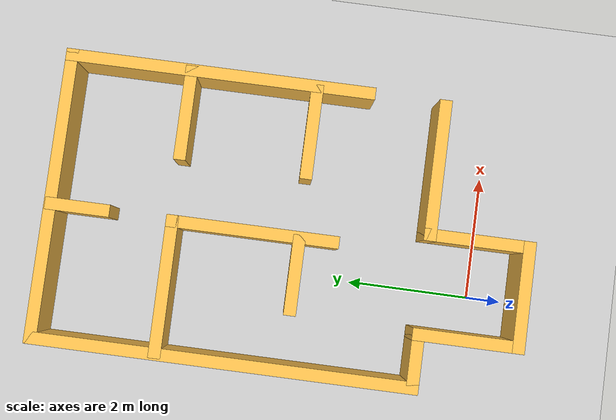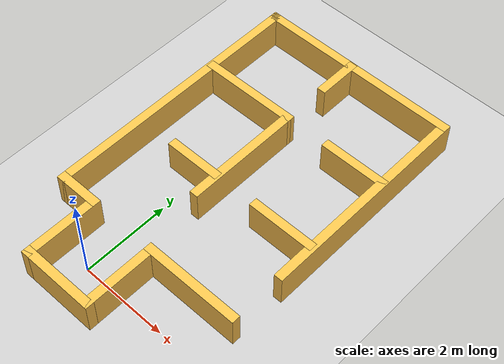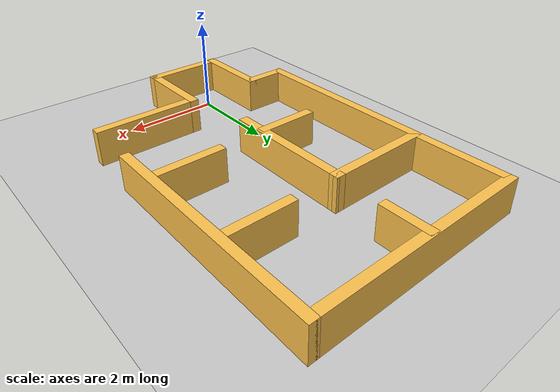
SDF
<sdf version="1.6">
 <world name="default">
  <scene><ambient>0.4 0.4 0.4 1</ambient><background>0.7 0.7 0.7 1</background><shadows>1</shadows></scene>
  <light name="sun" type="directional">
   <pose>0 0 10 0 -0 0</pose>
   <diffuse>0.8 0.8 0.8 1</diffuse>
   <specular>0.2 0.2 0.2 1</specular>
   <attenuation>
    <range>1000</range>
    <constant>0.9</constant>
    <linear>0.01</linear>
    <quadratic>0.001</quadratic>
   </attenuation>
   <direction>-0.5 0.1 -0.9</direction>
  </light>
  <model name="ground_plane">
   <static>1</static>
   <link name="link">
    <collision name="collision">
     <geometry><plane><normal>0 0 1</normal><size>100 100</size></plane></geometry>
     <surface>
      <contact><collide_bitmask>65535</collide_bitmask></contact>
      <friction><ode><mu>100</mu><mu2>50</mu2></ode></friction>
     </surface>
    </collision>
    <visual name="visual">
     <cast_shadows>0</cast_shadows>
     <geometry><plane><normal>0 0 1</normal><size>100 100</size></plane></geometry>
     <material>
      <script><uri>file://media/materials/scripts/gazebo.material</uri><name>Gazebo/Grey</name></script>
     </material>
    </visual>
   </link>
  </model>
  <physics name="default_physics" default="0" type="ode">
   <real_time_update_rate>1000</real_time_update_rate>
   <max_step_size>0.001</max_step_size>
   <real_time_factor>1</real_time_factor>
   <ode>
    <solver>
     <type>quick</type>
     <iters>150</iters>
     <precon_iters>0</precon_iters>
     <sor>1.4</sor>
     <use_dynamic_moi_rescaling>1</use_dynamic_moi_rescaling>
    </solver>
    <constraints>
     <cfm>1e-05</cfm>
     <erp>0.2</erp>
     <contact_max_correcting_vel>2000</contact_max_correcting_vel>
     <contact_surface_layer>0.01</contact_surface_layer>
    </constraints>
   </ode>
  </physics>
  <gravity>0 0 -9.8</gravity>
  <magnetic_field>6e-06 2.3e-05 -4.2e-05</magnetic_field>
  <atmosphere type="adiabatic"/>
  <audio><device>default</device></audio>
  <spherical_coordinates>
   <surface_model>EARTH_WGS84</surface_model>
   <latitude_deg>0</latitude_deg>
   <longitude_deg>0</longitude_deg>
   <elevation>0</elevation>
   <heading_deg>0</heading_deg>
  </spherical_coordinates>
  <model name="EnclosedMaze">
   <pose>0.772691 3.1109 0 0 -0 0</pose>
   <link name="Wall_12">
    <collision name="Wall_12_Collision">
     <geometry><box><size>4.8 0.2 0.75</size></box></geometry>
     <pose>0 0 0.375 0 -0 0</pose>
    </collision>
    <visual name="Wall_12_Visual">
     <pose>0 0 0.375 0 -0 0</pose>
     <geometry><box><size>4.8 0.2 0.75</size></box></geometry>
     <material>
      <script><uri>file://media/materials/scripts/gazebo.material</uri><name>Gazebo/Grey</name></script>
      <ambient>1 0.764706 0.305882 1</ambient>
     </material>
     <meta><layer>0</layer></meta>
    </visual>
    <pose>0 3.856 0 0 -0 0</pose>
   </link>
   <link name="Wall_13">
    <collision name="Wall_13_Collision">
     <geometry><box><size>5.062 0.2 0.75</size></box></geometry>
     <pose>0 0 0.375 0 -0 0</pose>
    </collision>
    <visual name="Wall_13_Visual">
     <pose>0 0 0.375 0 -0 0</pose>
     <geometry><box><size>5.062 0.2 0.75</size></box></geometry>
     <material>
      <script><uri>file://media/materials/scripts/gazebo.material</uri><name>Gazebo/Grey</name></script>
      <ambient>1 0.764706 0.305882 1</ambient>
     </material>
     <meta><layer>0</layer></meta>
    </visual>
    <pose>2.3 1.425 0 0 -0 -1.5708</pose>
   </link>
   <link name="Wall_15">
    <collision name="Wall_15_Collision">
     <geometry><box><size>1.05 0.2 0.75</size></box></geometry>
     <pose>0 0 0.375 0 -0 0</pose>
    </collision>
    <visual name="Wall_15_Visual">
     <pose>0 0 0.375 0 -0 0</pose>
     <geometry><box><size>1.05 0.2 0.75</size></box></geometry>
     <material>
      <script><uri>file://media/materials/scripts/gazebo.material</uri><name>Gazebo/Grey</name></script>
      <ambient>1 0.764706 0.305882 1</ambient>
     </material>
     <meta><layer>0</layer></meta>
    </visual>
    <pose>-0.141 3.416 0 0 -0 -1.5708</pose>
   </link>
   <link name="Wall_17">
    <collision name="Wall_17_Collision">
     <geometry><box><size>2.3 0.2 0.75</size></box></geometry>
     <pose>0 0 0.375 0 -0 0</pose>
    </collision>
    <visual name="Wall_17_Visual">
     <pose>0 0 0.375 0 -0 0</pose>
     <geometry><box><size>2.3 0.2 0.75</size></box></geometry>
     <material>
      <script><uri>file://media/materials/scripts/gazebo.material</uri><name>Gazebo/Grey</name></script>
      <ambient>1 0.764706 0.305882 1</ambient>
     </material>
     <meta><layer>0</layer></meta>
    </visual>
    <pose>-1.218 1.869 0 0 -0 0.005714</pose>
   </link>
   <link name="Wall_18">
    <collision name="Wall_18_Collision">
     <geometry><box><size>2.8005 0.2 0.75</size></box></geometry>
     <pose>0 0 0.375 0 -0 0</pose>
    </collision>
    <visual name="Wall_18_Visual">
     <pose>0 0 0.375 0 -0 0</pose>
     <geometry><box><size>2.8005 0.2 0.75</size></box></geometry>
     <material>
      <script><uri>file://media/materials/scripts/gazebo.material</uri><name>Gazebo/Grey</name></script>
      <ambient>1 0.764706 0.305882 1</ambient>
     </material>
     <meta><layer>0</layer></meta>
    </visual>
    <pose>-0.168 0.575 0 0 -0 -1.5708</pose>
   </link>
   <link name="Wall_20">
    <collision name="Wall_20_Collision">
     <geometry><box><size>1.3 0.2 0.75</size></box></geometry>
     <pose>0 0 0.375 0 -0 0</pose>
    </collision>
    <visual name="Wall_20_Visual">
     <pose>0 0 0.375 0 -0 0</pose>
     <geometry><box><size>1.3 0.2 0.75</size></box></geometry>
     <material>
      <script><uri>file://media/materials/scripts/gazebo.material</uri><name>Gazebo/Grey</name></script>
      <ambient>1 0.764706 0.305882 1</ambient>
     </material>
     <meta><layer>0</layer></meta>
    </visual>
    <pose>-0.771 -0.184 0 0 -0 3.14159</pose>
   </link>
   <link name="Wall_22">
    <collision name="Wall_22_Collision">
     <geometry><box><size>1.55 0.2 0.75</size></box></geometry>
     <pose>0 0 0.375 0 -0 0</pose>
    </collision>
    <visual name="Wall_22_Visual">
     <pose>0 0 0.375 0 -0 0</pose>
     <geometry><box><size>1.55 0.2 0.75</size></box></geometry>
     <material>
      <script><uri>file://media/materials/scripts/gazebo.material</uri><name>Gazebo/Grey</name></script>
      <ambient>1 0.764706 0.305882 1</ambient>
     </material>
     <meta><layer>0</layer></meta>
    </visual>
    <pose>1.6 1.898 0 0 -0 3.14159</pose>
   </link>
   <link name="Wall_24">
    <collision name="Wall_24_Collision">
     <geometry><box><size>1.55 0.2 0.75</size></box></geometry>
     <pose>0 0 0.375 0 -0 0</pose>
    </collision>
    <visual name="Wall_24_Visual">
     <pose>0 0 0.375 0 -0 0</pose>
     <geometry><box><size>1.55 0.2 0.75</size></box></geometry>
     <material>
      <script><uri>file://media/materials/scripts/gazebo.material</uri><name>Gazebo/Grey</name></script>
      <ambient>1 0.764706 0.305882 1</ambient>
     </material>
     <meta><layer>0</layer></meta>
    </visual>
    <pose>1.554 -0.161 0 0 -0 3.14159</pose>
   </link>
   <link name="Wall_27">
    <collision name="Wall_27_Collision">
     <geometry><box><size>2.3 0.2 0.75</size></box></geometry>
     <pose>0 0 0.375 0 -0 0</pose>
    </collision>
    <visual name="Wall_27_Visual">
     <pose>0 0 0.375 0 -0 0</pose>
     <geometry><box><size>2.3 0.2 0.75</size></box></geometry>
     <material>
      <script><uri>file://media/materials/scripts/gazebo.material</uri><name>Gazebo/Grey</name></script>
      <ambient>1 0.764706 0.305882 1</ambient>
     </material>
     <meta><layer>0</layer></meta>
    </visual>
    <pose>1.2 -2.256 0 0 -0 0</pose>
   </link>
   <link name="Wall_29">
    <collision name="Wall_29_Collision">
     <geometry><box><size>6.312 0.2 0.75</size></box></geometry>
     <pose>0 0 0.375 0 -0 0</pose>
    </collision>
    <visual name="Wall_29_Visual">
     <pose>0 0 0.375 0 -0 0</pose>
     <geometry><box><size>6.312 0.2 0.75</size></box></geometry>
     <material>
      <script><uri>file://media/materials/scripts/gazebo.material</uri><name>Gazebo/Grey</name></script>
      <ambient>1 0.764706 0.305882 1</ambient>
     </material>
     <meta><layer>0</layer></meta>
    </visual>
    <pose>-2.3 0.8 0 0 -0 -1.5708</pose>
   </link>
   <link name="Wall_30">
    <collision name="Wall_30_Collision">
     <geometry><box><size>1.05 0.2 0.75</size></box></geometry>
     <pose>0 0 0.375 0 -0 0</pose>
    </collision>
    <visual name="Wall_30_Visual">
     <pose>0 0 0.375 0 -0 0</pose>
     <geometry><box><size>1.05 0.2 0.75</size></box></geometry>
     <material>
      <script><uri>file://media/materials/scripts/gazebo.material</uri><name>Gazebo/Grey</name></script>
      <ambient>1 0.764706 0.305882 1</ambient>
     </material>
     <meta><layer>0</layer></meta>
    </visual>
    <pose>-1.875 -2.256 0 0 -0 0</pose>
   </link>
   <link name="Wall_31">
    <collision name="Wall_31_Collision">
     <geometry><box><size>1.8 0.2 0.75</size></box></geometry>
     <pose>0 0 0.375 0 -0 0</pose>
    </collision>
    <visual name="Wall_31_Visual">
     <pose>0 0 0.375 0 -0 0</pose>
     <geometry><box><size>1.8 0.2 0.75</size></box></geometry>
     <material>
      <script><uri>file://media/materials/scripts/gazebo.material</uri><name>Gazebo/Grey</name></script>
      <ambient>1 0.764706 0.305882 1</ambient>
     </material>
     <meta><layer>0</layer></meta>
    </visual>
    <pose>-1.45 -3.056 0 0 -0 -1.5708</pose>
   </link>
   <link name="Wall_34">
    <collision name="Wall_34_Collision">
     <geometry><box><size>1.8 0.2 0.75</size></box></geometry>
     <pose>0 0 0.375 0 -0 0</pose>
    </collision>
    <visual name="Wall_34_Visual">
     <pose>0 0 0.375 0 -0 0</pose>
     <geometry><box><size>1.8 0.2 0.75</size></box></geometry>
     <material>
      <script><uri>file://media/materials/scripts/gazebo.material</uri><name>Gazebo/Grey</name></script>
      <ambient>1 0.764706 0.305882 1</ambient>
     </material>
     <meta><layer>0</layer></meta>
    </visual>
    <pose>0.15 -3.056 0 0 -0 -1.5708</pose>
   </link>
   <link name="Wall_35">
    <collision name="Wall_35_Collision">
     <geometry><box><size>1.8 0.2 0.75</size></box></geometry>
     <pose>0 0 0.375 0 -0 0</pose>
    </collision>
    <visual name="Wall_35_Visual">
     <pose>0 0 0.375 0 -0 0</pose>
     <geometry><box><size>1.8 0.2 0.75</size></box></geometry>
     <material>
      <script><uri>file://media/materials/scripts/gazebo.material</uri><name>Gazebo/Grey</name></script>
      <ambient>1 0.764706 0.305882 1</ambient>
     </material>
     <meta><layer>0</layer></meta>
    </visual>
    <pose>-0.65 -3.856 0 0 -0 3.14159</pose>
   </link>
   <static>1</static>
  </model>
 </world>
</sdf>
